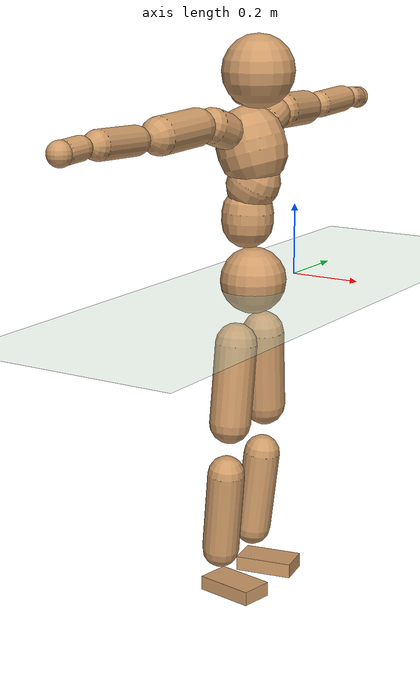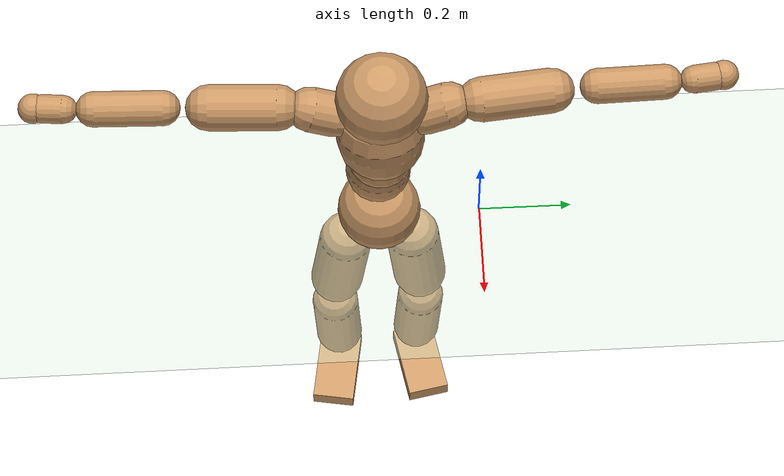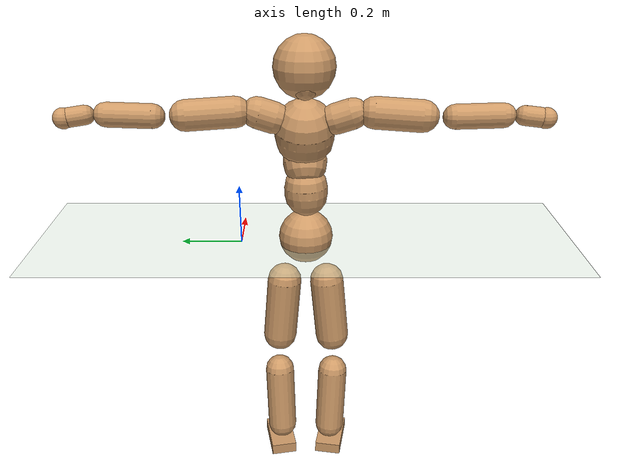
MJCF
<mujoco model="humanoid">
  <compiler coordinate="local"/>
  <default>
    <joint damping="0.0" armature="0.01" stiffness="0.0" limited="true"/>
    <geom conaffinity="1" condim="3" contype="7" margin="0.001" rgba="0.8 0.6 .4 1"/>
  </default>
  <asset>
    <texture type="skybox" builtin="gradient" rgb1=".4 .5 .6" rgb2="0 0 0" width="100" height="100"/>
    <texture builtin="flat" height="1278" mark="cross" markrgb="1 1 1" name="texgeom" random="0.01" rgb1="0.8 0.6 0.4" rgb2="0.8 0.6 0.4" type="cube" width="127"/>
    <texture builtin="checker" height="100" name="texplane" rgb1="0 0 0" rgb2="0.8 0.8 0.8" type="2d" width="100"/>
    <material name="MatPlane" reflectance="0.5" shininess="1" specular="1" texrepeat="60 60" texture="texplane"/>
    <material name="geom" texture="texgeom" texuniform="true"/>
  </asset>
  <worldbody>
    <light cutoff="100" diffuse="1 1 1" dir="-0 0 -1.3" directional="true" exponent="1" pos="0 0 1.3" specular=".1 .1 .1"/>
    <geom conaffinity="1" condim="3" name="floor" pos="0 0 0" rgba="0.8 0.9 0.8 1" size="100 100 .2" type="plane" material="MatPlane"/>
    <body name="Pelvis" pos="-0.0023 -0.219 0.0229">
      <freejoint name="Pelvis"/>
      <geom type="sphere" contype="1" conaffinity="1" density="500" size="0.0906" pos="0.0000 0.0000 0.0000" name="Pelvis"/>
      <body name="L_Hip" pos="-0.0111 0.068 -0.0907">
        <joint name="L_Hip_x" type="hinge" pos="0 0 0" axis="1 0 0" stiffness="800" damping="80" armature="0.02" range="-180.0000 180.0000"/>
        <joint name="L_Hip_y" type="hinge" pos="0 0 0" axis="0 1 0" stiffness="800" damping="80" armature="0.02" range="-180.0000 180.0000"/>
        <joint name="L_Hip_z" type="hinge" pos="0 0 0" axis="0 0 1" stiffness="800" damping="80" armature="0.02" range="-180.0000 180.0000"/>
        <geom type="capsule" contype="1" conaffinity="1" density="500" fromto="-0.0015 0.0060 -0.0720 -0.0058 0.0239 -0.2879" size="0.0583" name="L_Hip"/>
        <body name="L_Knee" pos="-0.0073 0.0299 -0.3599">
          <joint name="L_Knee_x" type="hinge" pos="0 0 0" axis="1 0 0" stiffness="800" damping="80" armature="0.02" range="-180.0000 180.0000"/>
          <joint name="L_Knee_y" type="hinge" pos="0 0 0" axis="0 1 0" stiffness="800" damping="80" armature="0.02" range="-180.0000 180.0000"/>
          <joint name="L_Knee_z" type="hinge" pos="0 0 0" axis="0 0 1" stiffness="800" damping="80" armature="0.02" range="-180.0000 180.0000"/>
          <geom type="capsule" contype="1" conaffinity="1" density="500" fromto="-0.0085 -0.0025 -0.0762 -0.0339 -0.0098 -0.3046" size="0.0513" name="L_Knee"/>
          <body name="L_Ankle" pos="-0.0424 -0.0123 -0.3808">
            <joint name="L_Ankle_x" type="hinge" pos="0 0 0" axis="1 0 0" stiffness="800" damping="80" armature="0.02" range="-180.0000 180.0000"/>
            <joint name="L_Ankle_y" type="hinge" pos="0 0 0" axis="0 1 0" stiffness="800" damping="80" armature="0.02" range="-180.0000 180.0000"/>
            <joint name="L_Ankle_z" type="hinge" pos="0 0 0" axis="0 0 1" stiffness="800" damping="80" armature="0.02" range="-180.0000 180.0000"/>
            <geom type="box" contype="1" conaffinity="1" density="500" pos="0.0569 0.0106 -0.0271" size="0.0809 0.0451 0.0202" quat="0.9957 0.0000 0.0000 0.0922" name="L_Ankle"/>
            <body name="L_Toe" pos="0.1137 0.0213 -0.0542">
              <joint name="L_Toe_x" type="hinge" pos="0 0 0" axis="1 0 0" stiffness="500" damping="50" armature="0.02" range="-180.0000 180.0000"/>
              <joint name="L_Toe_y" type="hinge" pos="0 0 0" axis="0 1 0" stiffness="500" damping="50" armature="0.02" range="-180.0000 180.0000"/>
              <joint name="L_Toe_z" type="hinge" pos="0 0 0" axis="0 0 1" stiffness="500" damping="50" armature="0.02" range="-180.0000 180.0000"/>
              <geom type="box" contype="1" conaffinity="1" density="500" pos="0.0000 0.0000 0.0265" size="0.001 0.0023 0.001" quat="0.9951 0.0000 0.0000 0.0990" name="L_Toe"/>
            </body>
          </body>
        </body>
      </body>
      <body name="R_Hip" pos="-0.0072 -0.0655 -0.0905">
        <joint name="R_Hip_x" type="hinge" pos="0 0 0" axis="1 0 0" stiffness="800" damping="80" armature="0.02" range="-180.0000 180.0000"/>
        <joint name="R_Hip_y" type="hinge" pos="0 0 0" axis="0 1 0" stiffness="800" damping="80" armature="0.02" range="-180.0000 180.0000"/>
        <joint name="R_Hip_z" type="hinge" pos="0 0 0" axis="0 0 1" stiffness="800" damping="80" armature="0.02" range="-180.0000 180.0000"/>
        <geom type="capsule" contype="1" conaffinity="1" density="500" fromto="-0.0020 -0.0071 -0.0732 -0.0080 -0.0285 -0.2926" size="0.0575" name="R_Hip"/>
        <body name="R_Knee" pos="-0.01 -0.0357 -0.3658">
          <joint name="R_Knee_x" type="hinge" pos="0 0 0" axis="1 0 0" stiffness="800" damping="80" armature="0.02" range="-180.0000 180.0000"/>
          <joint name="R_Knee_y" type="hinge" pos="0 0 0" axis="0 1 0" stiffness="800" damping="80" armature="0.02" range="-180.0000 180.0000"/>
          <joint name="R_Knee_z" type="hinge" pos="0 0 0" axis="0 0 1" stiffness="800" damping="80" armature="0.02" range="-180.0000 180.0000"/>
          <geom type="capsule" contype="1" conaffinity="1" density="500" fromto="-0.0080 0.0030 -0.0760 -0.0322 0.0119 -0.3041" size="0.0515" name="R_Knee"/>
          <body name="R_Ankle" pos="-0.0402 0.0148 -0.3801">
            <joint name="R_Ankle_x" type="hinge" pos="0 0 0" axis="1 0 0" stiffness="800" damping="80" armature="0.02" range="-180.0000 180.0000"/>
            <joint name="R_Ankle_y" type="hinge" pos="0 0 0" axis="0 1 0" stiffness="800" damping="80" armature="0.02" range="-180.0000 180.0000"/>
            <joint name="R_Ankle_z" type="hinge" pos="0 0 0" axis="0 0 1" stiffness="800" damping="80" armature="0.02" range="-180.0000 180.0000"/>
            <geom type="box" contype="1" conaffinity="1" density="500" pos="0.0587 -0.0101 -0.0230" size="0.0826 0.0462 0.0197" quat="0.9964 0.0000 0.0000 -0.0853" name="R_Ankle"/>
            <body name="R_Toe" pos="0.1174 -0.0203 -0.0461">
              <joint name="R_Toe_x" type="hinge" pos="0 0 0" axis="1 0 0" stiffness="500" damping="50" armature="0.02" range="-180.0000 180.0000"/>
              <joint name="R_Toe_y" type="hinge" pos="0 0 0" axis="0 1 0" stiffness="500" damping="50" armature="0.02" range="-180.0000 180.0000"/>
              <joint name="R_Toe_z" type="hinge" pos="0 0 0" axis="0 0 1" stiffness="500" damping="50" armature="0.02" range="-180.0000 180.0000"/>
              <geom type="box" contype="1" conaffinity="1" density="500" pos="0.0000 0.0000 0.0252" size="0.0009 0.0023 0.0011" quat="0.9971 0.0000 0.0000 -0.0758" name="R_Toe"/>
            </body>
          </body>
        </body>
      </body>
      <body name="Torso" pos="-0.0188 -0.0027 0.1046">
        <joint name="Torso_x" type="hinge" pos="0 0 0" axis="1 0 0" stiffness="1000" damping="100" armature="0.02" range="-180.0000 180.0000"/>
        <joint name="Torso_y" type="hinge" pos="0 0 0" axis="0 1 0" stiffness="1000" damping="100" armature="0.02" range="-180.0000 180.0000"/>
        <joint name="Torso_z" type="hinge" pos="0 0 0" axis="0 0 1" stiffness="1000" damping="100" armature="0.02" range="-180.0000 180.0000"/>
        <geom type="capsule" contype="1" conaffinity="1" density="500" fromto="0.0008 0.0026 0.0802 0.0005 0.0017 0.0534" size="0.0705" name="Torso"/>
        <body name="Spine" pos="0.0013 0.0044 0.1336">
          <joint name="Spine_x" type="hinge" pos="0 0 0" axis="1 0 0" stiffness="1000" damping="100" armature="0.02" range="-180.0000 180.0000"/>
          <joint name="Spine_y" type="hinge" pos="0 0 0" axis="0 1 0" stiffness="1000" damping="100" armature="0.02" range="-180.0000 180.0000"/>
          <joint name="Spine_z" type="hinge" pos="0 0 0" axis="0 0 1" stiffness="1000" damping="100" armature="0.02" range="-180.0000 180.0000"/>
          <geom type="capsule" contype="1" conaffinity="1" density="500" fromto="0.0179 0.0015 0.0304 0.0119 0.0010 0.0203" size="0.0715" name="Spine"/>
          <body name="Chest" pos="0.0298 0.0025 0.0506">
            <joint name="Chest_x" type="hinge" pos="0 0 0" axis="1 0 0" stiffness="1000" damping="100" armature="0.02" range="-180.0000 180.0000"/>
            <joint name="Chest_y" type="hinge" pos="0 0 0" axis="0 1 0" stiffness="1000" damping="100" armature="0.02" range="-180.0000 180.0000"/>
            <joint name="Chest_z" type="hinge" pos="0 0 0" axis="0 0 1" stiffness="1000" damping="100" armature="0.02" range="-180.0000 180.0000"/>
            <geom type="capsule" contype="1" conaffinity="1" density="500" fromto="-0.0261 -0.0008 0.0888 -0.0174 -0.0005 0.0592" size="0.0947" name="Chest"/>
            <body name="Neck" pos="-0.0517 -0.0025 0.2093">
              <joint name="Neck_x" type="hinge" pos="0 0 0" axis="1 0 0" stiffness="500" damping="50" armature="0.02" range="-180.0000 180.0000"/>
              <joint name="Neck_y" type="hinge" pos="0 0 0" axis="0 1 0" stiffness="500" damping="50" armature="0.02" range="-180.0000 180.0000"/>
              <joint name="Neck_z" type="hinge" pos="0 0 0" axis="0 0 1" stiffness="500" damping="50" armature="0.02" range="-180.0000 180.0000"/>
              <geom type="capsule" contype="1" conaffinity="1" density="500" fromto="0.0101 0.0006 0.0127 0.0402 0.0025 0.0508" size="0.0414" name="Neck"/>
              <body name="Head" pos="0.0503 0.0031 0.0635">
                <joint name="Head_x" type="hinge" pos="0 0 0" axis="1 0 0" stiffness="500" damping="50" armature="0.02" range="-180.0000 180.0000"/>
                <joint name="Head_y" type="hinge" pos="0 0 0" axis="0 1 0" stiffness="500" damping="50" armature="0.02" range="-180.0000 180.0000"/>
                <joint name="Head_z" type="hinge" pos="0 0 0" axis="0 0 1" stiffness="500" damping="50" armature="0.02" range="-180.0000 180.0000"/>
                <geom type="sphere" contype="1" conaffinity="1" density="500" size="0.0984" pos="0.0000 0.0000 0.0000" name="Head"/>
              </body>
            </body>
            <body name="L_Thorax" pos="-0.0375 0.0762 0.1184">
              <joint name="L_Thorax_x" type="hinge" pos="0 0 0" axis="1 0 0" stiffness="500" damping="50" armature="0.02" range="-180.0000 180.0000"/>
              <joint name="L_Thorax_y" type="hinge" pos="0 0 0" axis="0 1 0" stiffness="500" damping="50" armature="0.02" range="-180.0000 180.0000"/>
              <joint name="L_Thorax_z" type="hinge" pos="0 0 0" axis="0 0 1" stiffness="500" damping="50" armature="0.02" range="-180.0000 180.0000"/>
              <geom type="capsule" contype="1" conaffinity="1" density="500" fromto="-0.0016 0.0173 0.0060 -0.0063 0.0692 0.0240" size="0.0495" name="L_Thorax"/>
              <body name="L_Shoulder" pos="-0.0079 0.0864 0.03">
                <joint name="L_Shoulder_x" type="hinge" pos="0 0 0" axis="1 0 0" stiffness="500" damping="50" armature="0.02" range="-720.0000 720.0000"/>
                <joint name="L_Shoulder_y" type="hinge" pos="0 0 0" axis="0 1 0" stiffness="500" damping="50" armature="0.02" range="-720.0000 720.0000"/>
                <joint name="L_Shoulder_z" type="hinge" pos="0 0 0" axis="0 0 1" stiffness="500" damping="50" armature="0.02" range="-720.0000 720.0000"/>
                <geom type="capsule" contype="1" conaffinity="1" density="500" fromto="-0.0055 0.0506 -0.0022 -0.0221 0.2023 -0.0086" size="0.0486" name="L_Shoulder"/>
                <body name="L_Elbow" pos="-0.0276 0.2529 -0.0108">
                  <joint name="L_Elbow_x" type="hinge" pos="0 0 0" axis="1 0 0" stiffness="500" damping="50" armature="0.02" range="-720.0000 720.0000"/>
                  <joint name="L_Elbow_y" type="hinge" pos="0 0 0" axis="0 1 0" stiffness="500" damping="50" armature="0.02" range="-720.0000 720.0000"/>
                  <joint name="L_Elbow_z" type="hinge" pos="0 0 0" axis="0 0 1" stiffness="500" damping="50" armature="0.02" range="-720.0000 720.0000"/>
                  <geom type="capsule" contype="1" conaffinity="1" density="500" fromto="-0.0001 0.0472 0.0017 -0.0003 0.1889 0.0066" size="0.0382" name="L_Elbow"/>
                  <body name="L_Wrist" pos="-0.0004 0.2362 0.0083">
                    <joint name="L_Wrist_x" type="hinge" pos="0 0 0" axis="1 0 0" stiffness="300" damping="30" armature="0.02" range="-180.0000 180.0000"/>
                    <joint name="L_Wrist_y" type="hinge" pos="0 0 0" axis="0 1 0" stiffness="300" damping="30" armature="0.02" range="-180.0000 180.0000"/>
                    <joint name="L_Wrist_z" type="hinge" pos="0 0 0" axis="0 0 1" stiffness="300" damping="30" armature="0.02" range="-180.0000 180.0000"/>
                    <geom type="capsule" contype="1" conaffinity="1" density="500" fromto="-0.0026 0.0160 -0.0019 -0.0106 0.0640 -0.0077" size="0.0302" name="L_Wrist"/>
                    <body name="L_Hand" pos="-0.0132 0.08 -0.0096">
                      <joint name="L_Hand_x" type="hinge" pos="0 0 0" axis="1 0 0" stiffness="300" damping="30" armature="0.02" range="-180.0000 180.0000"/>
                      <joint name="L_Hand_y" type="hinge" pos="0 0 0" axis="0 1 0" stiffness="300" damping="30" armature="0.02" range="-180.0000 180.0000"/>
                      <joint name="L_Hand_z" type="hinge" pos="0 0 0" axis="0 0 1" stiffness="300" damping="30" armature="0.02" range="-180.0000 180.0000"/>
                      <geom type="sphere" contype="1" conaffinity="1" density="500" size="0.0323" pos="0.0000 0.0000 0.0000" name="L_Hand"/>
                    </body>
                  </body>
                </body>
              </body>
            </body>
            <body name="R_Thorax" pos="-0.0414 -0.0776 0.1162">
              <joint name="R_Thorax_x" type="hinge" pos="0 0 0" axis="1 0 0" stiffness="500" damping="50" armature="0.02" range="-180.0000 180.0000"/>
              <joint name="R_Thorax_y" type="hinge" pos="0 0 0" axis="0 1 0" stiffness="500" damping="50" armature="0.02" range="-180.0000 180.0000"/>
              <joint name="R_Thorax_z" type="hinge" pos="0 0 0" axis="0 0 1" stiffness="500" damping="50" armature="0.02" range="-180.0000 180.0000"/>
              <geom type="capsule" contype="1" conaffinity="1" density="500" fromto="-0.0019 -0.0179 0.0062 -0.0077 -0.0716 0.0249" size="0.0484" name="R_Thorax"/>
              <body name="R_Shoulder" pos="-0.0097 -0.0895 0.0312">
                <joint name="R_Shoulder_x" type="hinge" pos="0 0 0" axis="1 0 0" stiffness="500" damping="50" armature="0.02" range="-720.0000 720.0000"/>
                <joint name="R_Shoulder_y" type="hinge" pos="0 0 0" axis="0 1 0" stiffness="500" damping="50" armature="0.02" range="-720.0000 720.0000"/>
                <joint name="R_Shoulder_z" type="hinge" pos="0 0 0" axis="0 0 1" stiffness="500" damping="50" armature="0.02" range="-720.0000 720.0000"/>
                <geom type="capsule" contype="1" conaffinity="1" density="500" fromto="-0.0037 -0.0489 -0.0025 -0.0148 -0.1954 -0.0099" size="0.0501" name="R_Shoulder"/>
                <body name="R_Elbow" pos="-0.0185 -0.2443 -0.0123">
                  <joint name="R_Elbow_x" type="hinge" pos="0 0 0" axis="1 0 0" stiffness="500" damping="50" armature="0.02" range="-720.0000 720.0000"/>
                  <joint name="R_Elbow_y" type="hinge" pos="0 0 0" axis="0 1 0" stiffness="500" damping="50" armature="0.02" range="-720.0000 720.0000"/>
                  <joint name="R_Elbow_z" type="hinge" pos="0 0 0" axis="0 0 1" stiffness="500" damping="50" armature="0.02" range="-720.0000 720.0000"/>
                  <geom type="capsule" contype="1" conaffinity="1" density="500" fromto="-0.0008 -0.0485 0.0017 -0.0031 -0.1941 0.0068" size="0.0384" name="R_Elbow"/>
                  <body name="R_Wrist" pos="-0.0039 -0.2426 0.0085">
                    <joint name="R_Wrist_x" type="hinge" pos="0 0 0" axis="1 0 0" stiffness="300" damping="30" armature="0.02" range="-180.0000 180.0000"/>
                    <joint name="R_Wrist_y" type="hinge" pos="0 0 0" axis="0 1 0" stiffness="300" damping="30" armature="0.02" range="-180.0000 180.0000"/>
                    <joint name="R_Wrist_z" type="hinge" pos="0 0 0" axis="0 0 1" stiffness="300" damping="30" armature="0.02" range="-180.0000 180.0000"/>
                    <geom type="capsule" contype="1" conaffinity="1" density="500" fromto="-0.0021 -0.0160 -0.0014 -0.0083 -0.0641 -0.0057" size="0.0307" name="R_Wrist"/>
                    <body name="R_Hand" pos="-0.0103 -0.0801 -0.0072">
                      <joint name="R_Hand_x" type="hinge" pos="0 0 0" axis="1 0 0" stiffness="300" damping="30" armature="0.02" range="-180.0000 180.0000"/>
                      <joint name="R_Hand_y" type="hinge" pos="0 0 0" axis="0 1 0" stiffness="300" damping="30" armature="0.02" range="-180.0000 180.0000"/>
                      <joint name="R_Hand_z" type="hinge" pos="0 0 0" axis="0 0 1" stiffness="300" damping="30" armature="0.02" range="-180.0000 180.0000"/>
                      <geom type="sphere" contype="1" conaffinity="1" density="500" size="0.0322" pos="0.0000 0.0000 0.0000" name="R_Hand"/>
                    </body>
                  </body>
                </body>
              </body>
            </body>
          </body>
        </body>
      </body>
    </body>
  </worldbody>
  <actuator>
    <motor name="L_Hip_x" joint="L_Hip_x" gear="500"/>
    <motor name="L_Hip_y" joint="L_Hip_y" gear="500"/>
    <motor name="L_Hip_z" joint="L_Hip_z" gear="500"/>
    <motor name="L_Knee_x" joint="L_Knee_x" gear="500"/>
    <motor name="L_Knee_y" joint="L_Knee_y" gear="500"/>
    <motor name="L_Knee_z" joint="L_Knee_z" gear="500"/>
    <motor name="L_Ankle_x" joint="L_Ankle_x" gear="500"/>
    <motor name="L_Ankle_y" joint="L_Ankle_y" gear="500"/>
    <motor name="L_Ankle_z" joint="L_Ankle_z" gear="500"/>
    <motor name="L_Toe_x" joint="L_Toe_x" gear="500"/>
    <motor name="L_Toe_y" joint="L_Toe_y" gear="500"/>
    <motor name="L_Toe_z" joint="L_Toe_z" gear="500"/>
    <motor name="R_Hip_x" joint="R_Hip_x" gear="500"/>
    <motor name="R_Hip_y" joint="R_Hip_y" gear="500"/>
    <motor name="R_Hip_z" joint="R_Hip_z" gear="500"/>
    <motor name="R_Knee_x" joint="R_Knee_x" gear="500"/>
    <motor name="R_Knee_y" joint="R_Knee_y" gear="500"/>
    <motor name="R_Knee_z" joint="R_Knee_z" gear="500"/>
    <motor name="R_Ankle_x" joint="R_Ankle_x" gear="500"/>
    <motor name="R_Ankle_y" joint="R_Ankle_y" gear="500"/>
    <motor name="R_Ankle_z" joint="R_Ankle_z" gear="500"/>
    <motor name="R_Toe_x" joint="R_Toe_x" gear="500"/>
    <motor name="R_Toe_y" joint="R_Toe_y" gear="500"/>
    <motor name="R_Toe_z" joint="R_Toe_z" gear="500"/>
    <motor name="Torso_x" joint="Torso_x" gear="500"/>
    <motor name="Torso_y" joint="Torso_y" gear="500"/>
    <motor name="Torso_z" joint="Torso_z" gear="500"/>
    <motor name="Spine_x" joint="Spine_x" gear="500"/>
    <motor name="Spine_y" joint="Spine_y" gear="500"/>
    <motor name="Spine_z" joint="Spine_z" gear="500"/>
    <motor name="Chest_x" joint="Chest_x" gear="500"/>
    <motor name="Chest_y" joint="Chest_y" gear="500"/>
    <motor name="Chest_z" joint="Chest_z" gear="500"/>
    <motor name="Neck_x" joint="Neck_x" gear="500"/>
    <motor name="Neck_y" joint="Neck_y" gear="500"/>
    <motor name="Neck_z" joint="Neck_z" gear="500"/>
    <motor name="Head_x" joint="Head_x" gear="500"/>
    <motor name="Head_y" joint="Head_y" gear="500"/>
    <motor name="Head_z" joint="Head_z" gear="500"/>
    <motor name="L_Thorax_x" joint="L_Thorax_x" gear="500"/>
    <motor name="L_Thorax_y" joint="L_Thorax_y" gear="500"/>
    <motor name="L_Thorax_z" joint="L_Thorax_z" gear="500"/>
    <motor name="L_Shoulder_x" joint="L_Shoulder_x" gear="500"/>
    <motor name="L_Shoulder_y" joint="L_Shoulder_y" gear="500"/>
    <motor name="L_Shoulder_z" joint="L_Shoulder_z" gear="500"/>
    <motor name="L_Elbow_x" joint="L_Elbow_x" gear="500"/>
    <motor name="L_Elbow_y" joint="L_Elbow_y" gear="500"/>
    <motor name="L_Elbow_z" joint="L_Elbow_z" gear="500"/>
    <motor name="L_Wrist_x" joint="L_Wrist_x" gear="500"/>
    <motor name="L_Wrist_y" joint="L_Wrist_y" gear="500"/>
    <motor name="L_Wrist_z" joint="L_Wrist_z" gear="500"/>
    <motor name="L_Hand_x" joint="L_Hand_x" gear="500"/>
    <motor name="L_Hand_y" joint="L_Hand_y" gear="500"/>
    <motor name="L_Hand_z" joint="L_Hand_z" gear="500"/>
    <motor name="R_Thorax_x" joint="R_Thorax_x" gear="500"/>
    <motor name="R_Thorax_y" joint="R_Thorax_y" gear="500"/>
    <motor name="R_Thorax_z" joint="R_Thorax_z" gear="500"/>
    <motor name="R_Shoulder_x" joint="R_Shoulder_x" gear="500"/>
    <motor name="R_Shoulder_y" joint="R_Shoulder_y" gear="500"/>
    <motor name="R_Shoulder_z" joint="R_Shoulder_z" gear="500"/>
    <motor name="R_Elbow_x" joint="R_Elbow_x" gear="500"/>
    <motor name="R_Elbow_y" joint="R_Elbow_y" gear="500"/>
    <motor name="R_Elbow_z" joint="R_Elbow_z" gear="500"/>
    <motor name="R_Wrist_x" joint="R_Wrist_x" gear="500"/>
    <motor name="R_Wrist_y" joint="R_Wrist_y" gear="500"/>
    <motor name="R_Wrist_z" joint="R_Wrist_z" gear="500"/>
    <motor name="R_Hand_x" joint="R_Hand_x" gear="500"/>
    <motor name="R_Hand_y" joint="R_Hand_y" gear="500"/>
    <motor name="R_Hand_z" joint="R_Hand_z" gear="500"/>
  </actuator>
  <contact>
    <exclude body1="Torso" body2="Chest"/>
    <exclude body1="Head" body2="Chest"/>
    <exclude body1="R_Knee" body2="R_Toe"/>
    <exclude body1="R_Knee" body2="L_Ankle"/>
    <exclude body1="R_Knee" body2="L_Toe"/>
    <exclude body1="L_Knee" body2="L_Toe"/>
    <exclude body1="L_Knee" body2="R_Ankle"/>
    <exclude body1="L_Knee" body2="R_Toe"/>
    <exclude body1="L_Shoulder" body2="Chest"/>
    <exclude body1="R_Shoulder" body2="Chest"/>
  </contact>
  <sensor/>
  <size njmax="700" nconmax="700"/>
</mujoco>
